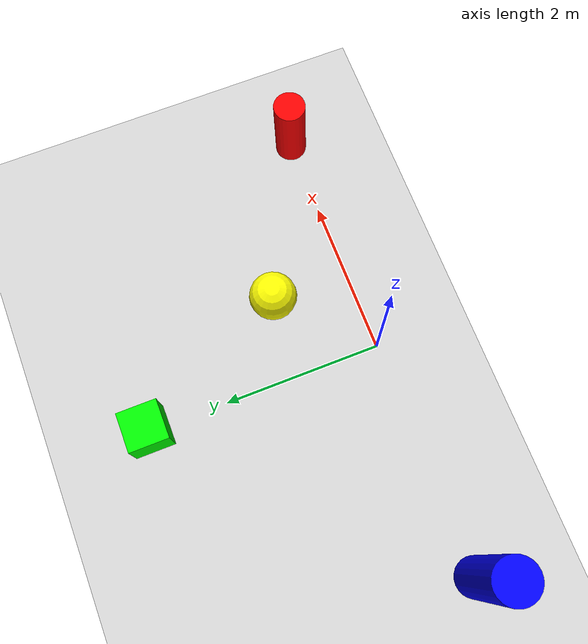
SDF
<!-- 版本定义，不管 -->
<?xml version="1.0" ?>
<sdf version="1.5">
  <!-- 这里开始定义一个世界，名字叫 default -->
  <world name="default">
    <!-- 全局方向光源，模拟太阳光照 -->
    <!-- include 是引用模型的意思，model://sun 具体路径通过 GAZEBO_MODEL_PATH 环境变量找到 -->
    <include>
      <uri>model://sun</uri>
    </include>
    <!-- 地面（带纹理平地） -->
    <!-- model://ground_plane 给世界加入地面 -->
    <include>
      <uri>model://ground_plane</uri>
    </include>
    <!-- 柏油路面 -->
    <include>
      <uri>model://asphalt_plane</uri>
    </include>
    <!-- 这里规定了物理引擎的参数，gazebo 默认使用 ODE 物理引擎 -->
    <physics name='default_physics' default='0' type='ode'>
      <!-- 定义了重力加速度，单位 m/s^2，z 轴向下为负 -->
      <gravity>0 0 -9.8066</gravity>
      <!-- 这里定义了 ODE 物理引擎的参数，主要是求解器和约束参数 -->
      <ode>
        <solver>
          <type>quick</type>
          <iters>10</iters>
          <sor>1.3</sor>
          <use_dynamic_moi_rescaling>0</use_dynamic_moi_rescaling>
        </solver>
        <constraints>
          <cfm>0</cfm>
          <erp>0.2</erp>
          <contact_max_correcting_vel>100</contact_max_correcting_vel>
          <contact_surface_layer>0.001</contact_surface_layer>
        </constraints>
      </ode>
      <max_step_size>0.004</max_step_size>
      <real_time_factor>1</real_time_factor>
      <real_time_update_rate>250</real_time_update_rate>
      <magnetic_field>6.0e-6 2.3e-5 -4.2e-5</magnetic_field>
    </physics>

    <!-- 地标1：红色柱子 @ (3, 0) -->
    <model name='red_pillar'>
      <static>1</static>
      <pose>3 0 0.5 0 0 0</pose>
      <link name='link'>
        <collision name='collision'>
          <geometry>
            <cylinder><radius>0.2</radius><length>1.0</length></cylinder>
          </geometry>
        </collision>
        <visual name='visual'>
          <geometry>
            <cylinder><radius>0.2</radius><length>1.0</length></cylinder>
          </geometry>
          <material>
            <ambient>1 0 0 1</ambient>
            <diffuse>1 0 0 1</diffuse>
          </material>
        </visual>
      </link>
    </model>

    <!-- 地标2：绿色箱子 @ (0, 3) -->
    <model name='green_box'>
      <static>1</static>
      <pose>0 3 0.25 0 0 0</pose>
      <link name='link'>
        <collision name='collision'>
          <geometry>
            <box><size>0.5 0.5 0.5</size></box>
          </geometry>
        </collision>
        <visual name='visual'>
          <geometry>
            <box><size>0.5 0.5 0.5</size></box>
          </geometry>
          <material>
            <ambient>0 1 0 1</ambient>
            <diffuse>0 1 0 1</diffuse>
          </material>
        </visual>
      </link>
    </model>

    <!-- 地标3：蓝色高塔 @ (-3, 0) -->
    <model name='blue_tower'>
      <static>1</static>
      <pose>-3 0 1.0 0 0 0</pose>
      <link name='link'>
        <collision name='collision'>
          <geometry>
            <cylinder><radius>0.25</radius><length>2.0</length></cylinder>
          </geometry>
        </collision>
        <visual name='visual'>
          <geometry>
            <cylinder><radius>0.25</radius><length>2.0</length></cylinder>
          </geometry>
          <material>
            <ambient>0 0 1 1</ambient>
            <diffuse>0 0 1 1</diffuse>
          </material>
        </visual>
      </link>
    </model>

    <!-- 地标4：黄色球体 @ (0, -3) -->
    <model name='yellow_sphere'>
      <static>1</static>
      <pose>1 1 0.3 0 0 0</pose>
      <link name= 'yellow_sphere'>
        <collision name = 'collision'>
          <geometry>
            <sphere><radius>0.3</radius></sphere>
          </geometry>
        </collision>
        <visual name='visual'>
          <geometry>
            <sphere><radius>0.3</radius></sphere>
          </geometry>
          <material>
            <ambient>1 1 0 1</ambient>
            <diffuse>1 1 0 1</diffuse>
          </material>
        </visual>
      </link>
    </model>

  </world>
</sdf>
